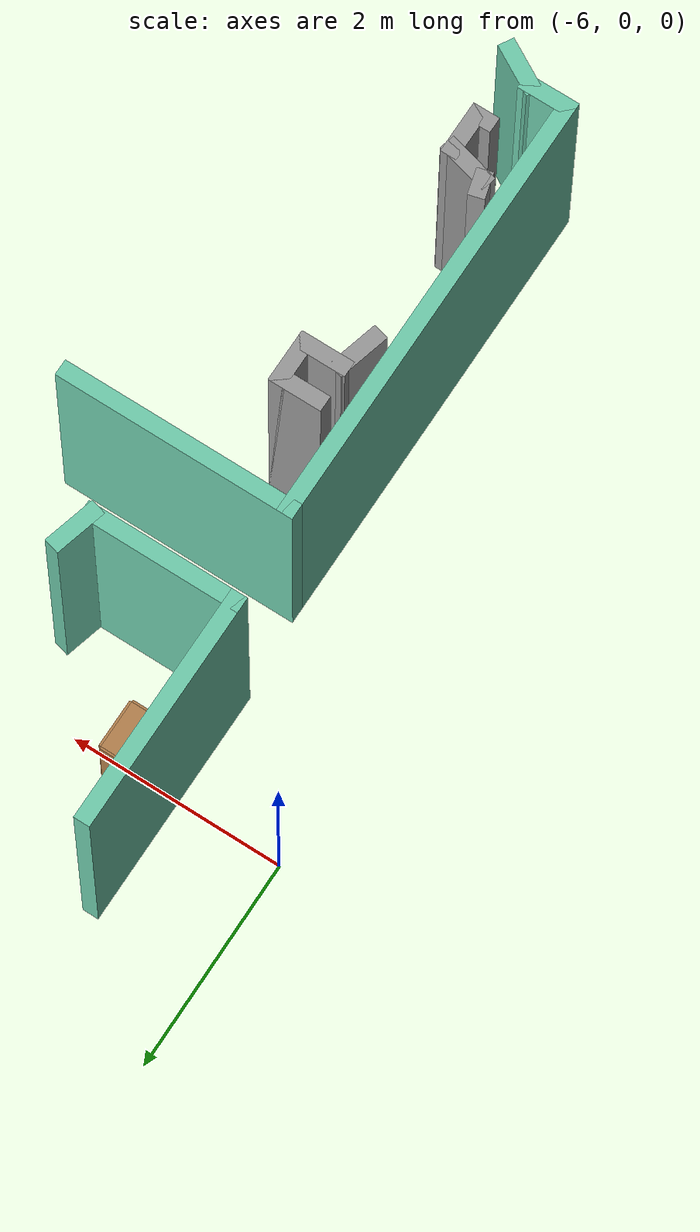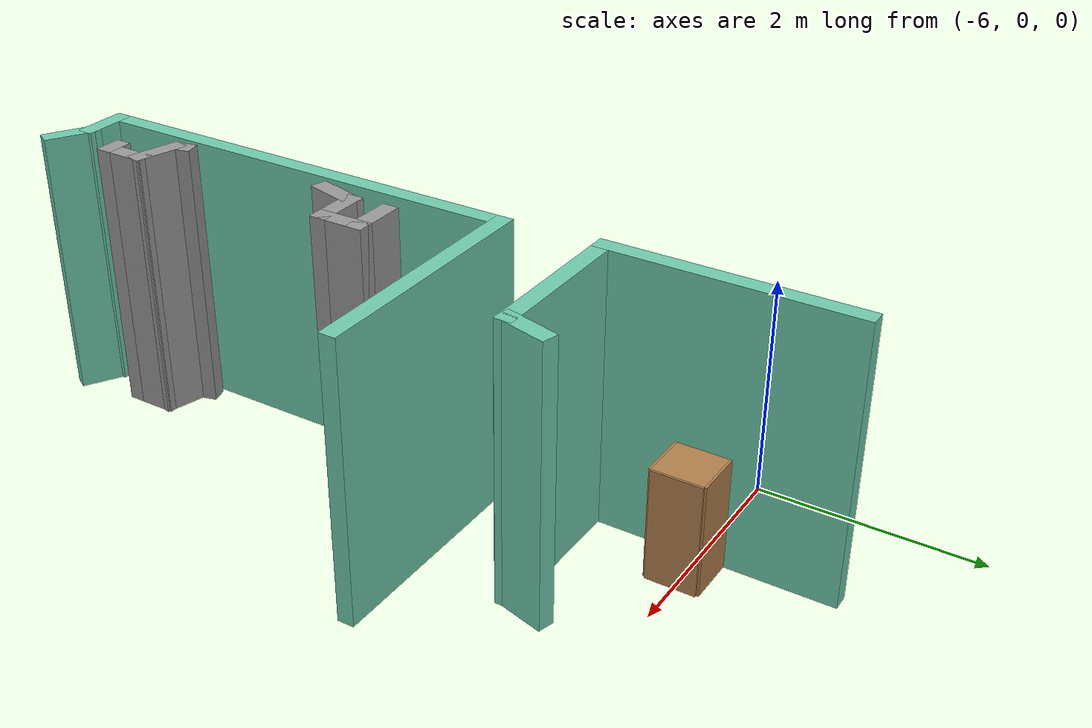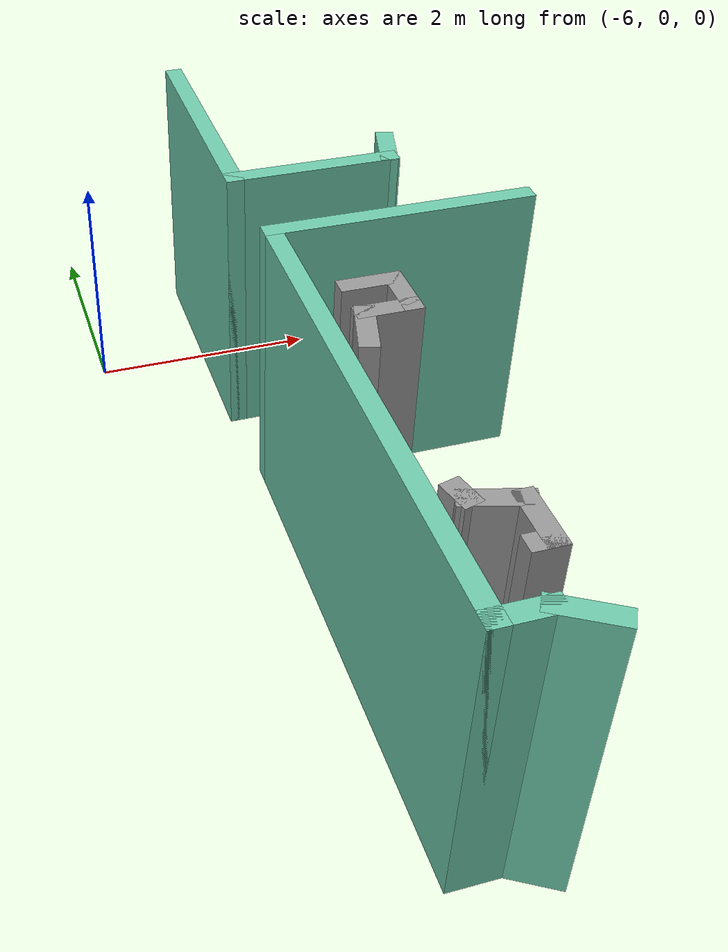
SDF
<sdf version="1.6">
 <world name="default">
  <model name="map_3">
   <pose>0.639107 -0.35531 0 0 -0 0</pose>
   <link name="Wall_138">
    <collision name="Wall_138_Collision">
     <geometry><box><size>0.5 0.15 2.5</size></box></geometry>
     <pose>0 0 1.25 0 -0 0</pose>
    </collision>
    <visual name="Wall_138_Visual">
     <pose>0 0 1.25 0 -0 0</pose>
     <geometry><box><size>0.5 0.15 2.5</size></box></geometry>
     <material>
      <script><uri>file://media/materials/scripts/gazebo.material</uri><name>Gazebo/Grey</name></script>
      <ambient>1 1 1 1</ambient>
     </material>
     <meta><layer>0</layer></meta>
    </visual>
    <pose>-5.02718 -2.4211 0 0 -0 0</pose>
   </link>
   <link name="Wall_139">
    <collision name="Wall_139_Collision">
     <geometry><box><size>0.5 0.15 2.5</size></box></geometry>
     <pose>0 0 1.25 0 -0 0</pose>
    </collision>
    <visual name="Wall_139_Visual">
     <pose>0 0 1.25 0 -0 0</pose>
     <geometry><box><size>0.5 0.15 2.5</size></box></geometry>
     <material>
      <script><uri>file://media/materials/scripts/gazebo.material</uri><name>Gazebo/Grey</name></script>
      <ambient>1 1 1 1</ambient>
     </material>
     <meta><layer>0</layer></meta>
    </visual>
    <pose>-4.85218 -2.5961 0 0 -0 -1.5708</pose>
   </link>
   <link name="Wall_140">
    <collision name="Wall_140_Collision">
     <geometry><box><size>0.5 0.15 2.5</size></box></geometry>
     <pose>0 0 1.25 0 -0 0</pose>
    </collision>
    <visual name="Wall_140_Visual">
     <pose>0 0 1.25 0 -0 0</pose>
     <geometry><box><size>0.5 0.15 2.5</size></box></geometry>
     <material>
      <script><uri>file://media/materials/scripts/gazebo.material</uri><name>Gazebo/Grey</name></script>
      <ambient>1 1 1 1</ambient>
     </material>
     <meta><layer>0</layer></meta>
    </visual>
    <pose>-5.02718 -2.7711 0 0 -0 3.14159</pose>
   </link>
   <link name="Wall_141">
    <collision name="Wall_141_Collision">
     <geometry><box><size>0.5 0.15 2.5</size></box></geometry>
     <pose>0 0 1.25 0 -0 0</pose>
    </collision>
    <visual name="Wall_141_Visual">
     <pose>0 0 1.25 0 -0 0</pose>
     <geometry><box><size>0.5 0.15 2.5</size></box></geometry>
     <material>
      <script><uri>file://media/materials/scripts/gazebo.material</uri><name>Gazebo/Grey</name></script>
      <ambient>1 1 1 1</ambient>
     </material>
     <meta><layer>0</layer></meta>
    </visual>
    <pose>-5.24747 -2.94014 0 0 -0 -1.8326</pose>
   </link>
   <link name="Wall_144">
    <collision name="Wall_144_Collision">
     <geometry><box><size>0.25 0.15 2.5</size></box></geometry>
     <pose>0 0 1.25 0 -0 0</pose>
    </collision>
    <visual name="Wall_144_Visual">
     <pose>0 0 1.25 0 -0 0</pose>
     <geometry><box><size>0.25 0.15 2.5</size></box></geometry>
     <material>
      <script><uri>file://media/materials/scripts/gazebo.material</uri><name>Gazebo/Grey</name></script>
      <ambient>1 1 1 1</ambient>
     </material>
     <meta><layer>0</layer></meta>
    </visual>
    <pose>-5.28923 -4.6894 0 0 -0 -1.309</pose>
   </link>
   <link name="Wall_145">
    <collision name="Wall_145_Collision">
     <geometry><box><size>0.5 0.15 2.5</size></box></geometry>
     <pose>0 0 1.25 0 -0 0</pose>
    </collision>
    <visual name="Wall_145_Visual">
     <pose>0 0 1.25 0 -0 0</pose>
     <geometry><box><size>0.5 0.15 2.5</size></box></geometry>
     <material>
      <script><uri>file://media/materials/scripts/gazebo.material</uri><name>Gazebo/Grey</name></script>
      <ambient>1 1 1 1</ambient>
     </material>
     <meta><layer>0</layer></meta>
    </visual>
    <pose>-5.10726 -4.78299 0 0 -0 -0.261799</pose>
   </link>
   <link name="Wall_146">
    <collision name="Wall_146_Collision">
     <geometry><box><size>0.5 0.15 2.5</size></box></geometry>
     <pose>0 0 1.25 0 -0 0</pose>
    </collision>
    <visual name="Wall_146_Visual">
     <pose>0 0 1.25 0 -0 0</pose>
     <geometry><box><size>0.5 0.15 2.5</size></box></geometry>
     <material>
      <script><uri>file://media/materials/scripts/gazebo.material</uri><name>Gazebo/Grey</name></script>
      <ambient>1 1 1 1</ambient>
     </material>
     <meta><layer>0</layer></meta>
    </visual>
    <pose>-4.93822 -5.00328 0 0 -0 -1.5708</pose>
   </link>
   <link name="Wall_147">
    <collision name="Wall_147_Collision">
     <geometry><box><size>0.25 0.15 2.5</size></box></geometry>
     <pose>0 0 1.25 0 -0 0</pose>
    </collision>
    <visual name="Wall_147_Visual">
     <pose>0 0 1.25 0 -0 0</pose>
     <geometry><box><size>0.25 0.15 2.5</size></box></geometry>
     <material>
      <script><uri>file://media/materials/scripts/gazebo.material</uri><name>Gazebo/Grey</name></script>
      <ambient>1 1 1 1</ambient>
     </material>
     <meta><layer>0</layer></meta>
    </visual>
    <pose>-4.98822 -5.17828 0 0 -0 3.14159</pose>
   </link>
   <link name="Wall_43">
    <collision name="Wall_43_Collision">
     <geometry><box><size>2.25 0.15 2.5</size></box></geometry>
     <pose>0 0 1.25 0 -0 0</pose>
    </collision>
    <visual name="Wall_43_Visual">
     <pose>0 0 1.25 0 -0 0</pose>
     <geometry><box><size>2.25 0.15 2.5</size></box></geometry>
     <material>
      <script><uri>file://media/materials/scripts/gazebo.material</uri><name>Gazebo/Grey</name></script>
      <ambient>0.435294 0.796078 0.67451 1</ambient>
     </material>
     <meta><layer>0</layer></meta>
    </visual>
    <pose>-5.57626 0.405686 0 0 -0 -1.5708</pose>
   </link>
   <link name="Wall_44">
    <collision name="Wall_44_Collision">
     <geometry><box><size>1.5 0.15 2.5</size></box></geometry>
     <pose>0 0 1.25 0 -0 0</pose>
    </collision>
    <visual name="Wall_44_Visual">
     <pose>0 0 1.25 0 -0 0</pose>
     <geometry><box><size>1.5 0.15 2.5</size></box></geometry>
     <material>
      <script><uri>file://media/materials/scripts/gazebo.material</uri><name>Gazebo/Grey</name></script>
      <ambient>0.435294 0.796078 0.67451 1</ambient>
     </material>
     <meta><layer>0</layer></meta>
    </visual>
    <pose>-4.90126 -0.644314 0 0 -0 0</pose>
   </link>
   <link name="Wall_45">
    <collision name="Wall_45_Collision">
     <geometry><box><size>0.5 0.15 2.5</size></box></geometry>
     <pose>0 0 1.25 0 -0 0</pose>
    </collision>
    <visual name="Wall_45_Visual">
     <pose>0 0 1.25 0 -0 0</pose>
     <geometry><box><size>0.5 0.15 2.5</size></box></geometry>
     <material>
      <script><uri>file://media/materials/scripts/gazebo.material</uri><name>Gazebo/Grey</name></script>
      <ambient>0.435294 0.796078 0.67451 1</ambient>
     </material>
     <meta><layer>0</layer></meta>
    </visual>
    <pose>-4.18097 -0.475277 0 0 -0 1.309</pose>
   </link>
   <link name="Wall_59">
    <collision name="Wall_59_Collision">
     <geometry><box><size>2.25 0.15 2.5</size></box></geometry>
     <pose>0 0 1.25 0 -0 0</pose>
    </collision>
    <visual name="Wall_59_Visual">
     <pose>0 0 1.25 0 -0 0</pose>
     <geometry><box><size>2.25 0.15 2.5</size></box></geometry>
     <material>
      <script><uri>file://media/materials/scripts/gazebo.material</uri><name>Gazebo/Grey</name></script>
      <ambient>0.435294 0.796078 0.67451 1</ambient>
     </material>
     <meta><layer>0</layer></meta>
    </visual>
    <pose>-4.45979 -1.53401 0 0 -0 3.14159</pose>
   </link>
   <link name="Wall_62">
    <collision name="Wall_62_Collision">
     <geometry><box><size>4.25 0.15 2.5</size></box></geometry>
     <pose>0 0 1.25 0 -0 0</pose>
    </collision>
    <visual name="Wall_62_Visual">
     <pose>0 0 1.25 0 -0 0</pose>
     <geometry><box><size>4.25 0.15 2.5</size></box></geometry>
     <material>
      <script><uri>file://media/materials/scripts/gazebo.material</uri><name>Gazebo/Grey</name></script>
      <ambient>0.435294 0.796078 0.67451 1</ambient>
     </material>
     <meta><layer>0</layer></meta>
    </visual>
    <pose>-5.50979 -3.58401 0 0 -0 -1.5708</pose>
   </link>
   <link name="Wall_63">
    <collision name="Wall_63_Collision">
     <geometry><box><size>0.5 0.15 2.5</size></box></geometry>
     <pose>0 0 1.25 0 -0 0</pose>
    </collision>
    <visual name="Wall_63_Visual">
     <pose>0 0 1.25 0 -0 0</pose>
     <geometry><box><size>0.5 0.15 2.5</size></box></geometry>
     <material>
      <script><uri>file://media/materials/scripts/gazebo.material</uri><name>Gazebo/Grey</name></script>
      <ambient>0.435294 0.796078 0.67451 1</ambient>
     </material>
     <meta><layer>0</layer></meta>
    </visual>
    <pose>-5.33479 -5.63401 0 0 -0 0</pose>
   </link>
   <link name="Wall_64">
    <collision name="Wall_64_Collision">
     <geometry><box><size>0.5 0.15 2.5</size></box></geometry>
     <pose>0 0 1.25 0 -0 0</pose>
    </collision>
    <visual name="Wall_64_Visual">
     <pose>0 0 1.25 0 -0 0</pose>
     <geometry><box><size>0.5 0.15 2.5</size></box></geometry>
     <material>
      <script><uri>file://media/materials/scripts/gazebo.material</uri><name>Gazebo/Grey</name></script>
      <ambient>0.435294 0.796078 0.67451 1</ambient>
     </material>
     <meta><layer>0</layer></meta>
    </visual>
    <pose>-5.00824 -5.72151 0 0 -0 -0.523599</pose>
   </link>
   <static>1</static>
  </model>
  <model name="cabinet_1">
   <static>1</static>
   <link name="cabinet_bottom_plate">
    <inertial>
     <pose>0 0 -1 0 -0 0</pose>
     <inertia><ixx>2.05</ixx><ixy>0</ixy><ixz>0</ixz><iyy>2.05</iyy><iyz>0</iyz><izz>2.05</izz></inertia>
     <mass>25</mass>
    </inertial>
    <collision name="cabinet_bottom_plate_geom">
     <pose>0 0 0.01 0 -0 0</pose>
     <geometry><box><size>0.45 0.45 0.02</size></box></geometry>
    </collision>
    <visual name="cabinet_bottom_plate_geom_visual">
     <pose>0 0 0.01 0 -0 0</pose>
     <geometry><box><size>0.45 0.45 0.02</size></box></geometry>
     <material>
      <script><uri>file://media/materials/scripts/gazebo.material</uri><name>Gazebo/Wood</name></script>
     </material>
    </visual>
    <collision name="cabinet_bottom_plate_geom_cabinet_back_plate">
     <pose>0.235 0 0.51 0 -0 0</pose>
     <geometry><box><size>0.02 0.45 1.02</size></box></geometry>
    </collision>
    <visual name="cabinet_bottom_plate_geom_cabinet_back_plate_visual">
     <pose>0.235 0 0.51 0 -0 0</pose>
     <geometry><box><size>0.02 0.45 1.02</size></box></geometry>
     <material>
      <script><uri>file://media/materials/scripts/gazebo.material</uri><name>Gazebo/Wood</name></script>
     </material>
    </visual>
    <collision name="cabinet_bottom_plate_geom_cabinet_left_plate">
     <pose>0 0.235 0.51 0 -0 0</pose>
     <geometry><box><size>0.45 0.02 1.02</size></box></geometry>
    </collision>
    <visual name="cabinet_bottom_plate_geom_cabinet_left_plate_visual">
     <pose>0 0.235 0.51 0 -0 0</pose>
     <geometry><box><size>0.45 0.02 1.02</size></box></geometry>
     <material>
      <script><uri>file://media/materials/scripts/gazebo.material</uri><name>Gazebo/Wood</name></script>
     </material>
    </visual>
    <collision name="cabinet_bottom_plate_geom_cabinet_middle_plate">
     <pose>0 0 0.51 0 -0 0</pose>
     <geometry><box><size>0.45 0.45 0.02</size></box></geometry>
    </collision>
    <visual name="cabinet_bottom_plate_geom_cabinet_middle_plate_visual">
     <pose>0 0 0.51 0 -0 0</pose>
     <geometry><box><size>0.45 0.45 0.02</size></box></geometry>
     <material>
      <script><uri>file://media/materials/scripts/gazebo.material</uri><name>Gazebo/Wood</name></script>
     </material>
    </visual>
    <collision name="cabinet_bottom_plate_geom_cabinet_right_plate">
     <pose>0 -0.235 0.51 0 -0 0</pose>
     <geometry><box><size>0.45 0.02 1.02</size></box></geometry>
    </collision>
    <visual name="cabinet_bottom_plate_geom_cabinet_right_plate_visual">
     <pose>0 -0.235 0.51 0 -0 0</pose>
     <geometry><box><size>0.45 0.02 1.02</size></box></geometry>
     <material>
      <script><uri>file://media/materials/scripts/gazebo.material</uri><name>Gazebo/Wood</name></script>
     </material>
    </visual>
    <collision name="cabinet_bottom_plate_geom_cabinet_top_plate">
     <pose>0 0 1.01 0 -0 0</pose>
     <geometry><box><size>0.45 0.45 0.02</size></box></geometry>
    </collision>
    <visual name="cabinet_bottom_plate_geom_cabinet_top_plate_visual">
     <pose>0 0 1.01 0 -0 0</pose>
     <geometry><box><size>0.45 0.45 0.02</size></box></geometry>
     <material>
      <script><uri>file://media/materials/scripts/gazebo.material</uri><name>Gazebo/Wood</name></script>
     </material>
    </visual>
   </link>
   <pose>-4.64684 -0.026596 0 0 -0 0</pose>
  </model>
 </world>
</sdf>
